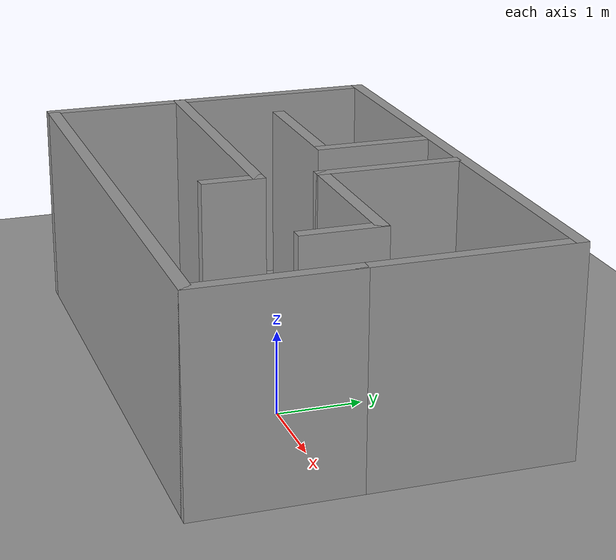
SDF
<sdf version="1.7">
 <world name="default">
  <light name="sun" type="directional">
   <pose>0 0 10 0 -0 0</pose>
   <diffuse>0.8 0.8 0.8 1</diffuse>
   <specular>0.2 0.2 0.2 1</specular>
   <attenuation>
    <range>1000</range>
    <constant>0.9</constant>
    <linear>0.01</linear>
    <quadratic>0.001</quadratic>
   </attenuation>
   <direction>-0.5 0.1 -0.9</direction>
   <spot><inner_angle>0</inner_angle><outer_angle>0</outer_angle><falloff>0</falloff></spot>
  </light>
  <model name="ground_plane">
   <static>1</static>
   <link name="link">
    <collision name="collision">
     <geometry><plane><normal>0 0 1</normal><size>100 100</size></plane></geometry>
     <surface>
      <contact><collide_bitmask>65535</collide_bitmask></contact>
      <friction><ode><mu>100</mu><mu2>50</mu2></ode></friction>
     </surface>
    </collision>
    <visual name="visual">
     <cast_shadows>0</cast_shadows>
     <geometry><plane><normal>0 0 1</normal><size>100 100</size></plane></geometry>
     <material>
      <script><uri>file://media/materials/scripts/gazebo.material</uri><name>Gazebo/Grey</name></script>
     </material>
    </visual>
   </link>
  </model>
  <gravity>0 0 -9.8</gravity>
  <magnetic_field>6e-06 2.3e-05 -4.2e-05</magnetic_field>
  <atmosphere type="adiabatic"/>
  <physics type="ode">
   <max_step_size>0.001</max_step_size>
   <real_time_factor>1</real_time_factor>
   <real_time_update_rate>1000</real_time_update_rate>
  </physics>
  <scene><ambient>0.4 0.4 0.4 1</ambient><background>0.7 0.7 0.7 1</background><shadows>1</shadows></scene>
  <audio><device>default</device></audio>
  <spherical_coordinates>
   <surface_model>EARTH_WGS84</surface_model>
   <latitude_deg>0</latitude_deg>
   <longitude_deg>0</longitude_deg>
   <elevation>0</elevation>
   <heading_deg>0</heading_deg>
  </spherical_coordinates>
  <model name="room1">
   <pose>-1.09301 1.19824 0 0 -0 0</pose>
   <link name="Wall_0">
    <collision name="Wall_0_Collision">
     <geometry><box><size>6.5 0.15 2.5</size></box></geometry>
     <pose>0 0 1.25 0 -0 0</pose>
    </collision>
    <visual name="Wall_0_Visual">
     <pose>0 0 1.25 0 -0 0</pose>
     <geometry><box><size>6.5 0.15 2.5</size></box></geometry>
     <material>
      <script><uri>file://media/materials/scripts/gazebo.material</uri><name>Gazebo/Grey</name></script>
      <ambient>1 1 1 1</ambient>
     </material>
     <meta><layer>0</layer></meta>
    </visual>
    <pose>0 1.3225 0 0 -0 0</pose>
   </link>
   <link name="Wall_1">
    <collision name="Wall_1_Collision">
     <geometry><box><size>2.5 0.15 2.5</size></box></geometry>
     <pose>0 0 1.25 0 -0 0</pose>
    </collision>
    <visual name="Wall_1_Visual">
     <pose>0 0 1.25 0 -0 0</pose>
     <geometry><box><size>2.5 0.15 2.5</size></box></geometry>
     <material>
      <script><uri>file://media/materials/scripts/gazebo.material</uri><name>Gazebo/Grey</name></script>
      <ambient>1 1 1 1</ambient>
     </material>
     <meta><layer>0</layer></meta>
    </visual>
    <pose>3.175 0.1475 0 0 -0 -1.5708</pose>
   </link>
   <link name="Wall_10">
    <collision name="Wall_10_Collision">
     <geometry><box><size>1.5 0.15 2.5</size></box></geometry>
     <pose>0 0 1.25 0 -0 0</pose>
    </collision>
    <visual name="Wall_10_Visual">
     <pose>0 0 1.25 0 -0 0</pose>
     <geometry><box><size>1.5 0.15 2.5</size></box></geometry>
     <material>
      <script><uri>file://media/materials/scripts/gazebo.material</uri><name>Gazebo/Grey</name></script>
      <ambient>1 1 1 1</ambient>
     </material>
     <meta><layer>0</layer></meta>
    </visual>
    <pose>-0.650115 0.601741 0 0 -0 -1.5708</pose>
   </link>
   <link name="Wall_11">
    <collision name="Wall_11_Collision">
     <geometry><box><size>1.75 0.15 2.5</size></box></geometry>
     <pose>0 0 1.25 0 -0 0</pose>
    </collision>
    <visual name="Wall_11_Visual">
     <pose>0 0 1.25 0 -0 0</pose>
     <geometry><box><size>1.75 0.15 2.5</size></box></geometry>
     <material>
      <script><uri>file://media/materials/scripts/gazebo.material</uri><name>Gazebo/Grey</name></script>
      <ambient>1 1 1 1</ambient>
     </material>
     <meta><layer>0</layer></meta>
    </visual>
    <pose>-1.45012 -0.073259 0 0 -0 3.14159</pose>
   </link>
   <link name="Wall_13">
    <collision name="Wall_13_Collision">
     <geometry><box><size>3.5 0.15 2.5</size></box></geometry>
     <pose>0 0 1.25 0 -0 0</pose>
    </collision>
    <visual name="Wall_13_Visual">
     <pose>0 0 1.25 0 -0 0</pose>
     <geometry><box><size>3.5 0.15 2.5</size></box></geometry>
     <material>
      <script><uri>file://media/materials/scripts/gazebo.material</uri><name>Gazebo/Grey</name></script>
      <ambient>1 1 1 1</ambient>
     </material>
     <meta><layer>0</layer></meta>
    </visual>
    <pose>-1.49268 -1.12664 0 0 -0 0</pose>
   </link>
   <link name="Wall_14">
    <collision name="Wall_14_Collision">
     <geometry><box><size>0.75 0.15 2.5</size></box></geometry>
     <pose>0 0 1.25 0 -0 0</pose>
    </collision>
    <visual name="Wall_14_Visual">
     <pose>0 0 1.25 0 -0 0</pose>
     <geometry><box><size>0.75 0.15 2.5</size></box></geometry>
     <material>
      <script><uri>file://media/materials/scripts/gazebo.material</uri><name>Gazebo/Grey</name></script>
      <ambient>1 1 1 1</ambient>
     </material>
     <meta><layer>0</layer></meta>
    </visual>
    <pose>0.182322 -1.42665 0 0 -0 -1.5708</pose>
   </link>
   <link name="Wall_17">
    <collision name="Wall_17_Collision">
     <geometry><box><size>1.75 0.15 2.5</size></box></geometry>
     <pose>0 0 1.25 0 -0 0</pose>
    </collision>
    <visual name="Wall_17_Visual">
     <pose>0 0 1.25 0 -0 0</pose>
     <geometry><box><size>1.75 0.15 2.5</size></box></geometry>
     <material>
      <script><uri>file://media/materials/scripts/gazebo.material</uri><name>Gazebo/Grey</name></script>
      <ambient>1 1 1 1</ambient>
     </material>
     <meta><layer>0</layer></meta>
    </visual>
    <pose>0.262322 0.403355 0 0 -0 -1.5708</pose>
   </link>
   <link name="Wall_18">
    <collision name="Wall_18_Collision">
     <geometry><box><size>2 0.15 2.5</size></box></geometry>
     <pose>0 0 1.25 0 -0 0</pose>
    </collision>
    <visual name="Wall_18_Visual">
     <pose>0 0 1.25 0 -0 0</pose>
     <geometry><box><size>2 0.15 2.5</size></box></geometry>
     <material>
      <script><uri>file://media/materials/scripts/gazebo.material</uri><name>Gazebo/Grey</name></script>
      <ambient>1 1 1 1</ambient>
     </material>
     <meta><layer>0</layer></meta>
    </visual>
    <pose>1.18732 -0.396645 0 0 -0 0</pose>
   </link>
   <link name="Wall_19">
    <collision name="Wall_19_Collision">
     <geometry><box><size>1 0.15 2.5</size></box></geometry>
     <pose>0 0 1.25 0 -0 0</pose>
    </collision>
    <visual name="Wall_19_Visual">
     <pose>0 0 1.25 0 -0 0</pose>
     <geometry><box><size>1 0.15 2.5</size></box></geometry>
     <material>
      <script><uri>file://media/materials/scripts/gazebo.material</uri><name>Gazebo/Grey</name></script>
      <ambient>1 1 1 1</ambient>
     </material>
     <meta><layer>0</layer></meta>
    </visual>
    <pose>2.11232 -0.821645 0 0 -0 -1.5708</pose>
   </link>
   <link name="Wall_21">
    <collision name="Wall_21_Collision">
     <geometry><box><size>4.25 0.15 2.5</size></box></geometry>
     <pose>0 0 1.25 0 -0 0</pose>
    </collision>
    <visual name="Wall_21_Visual">
     <pose>0 0 1.25 0 -0 0</pose>
     <geometry><box><size>4.25 0.15 2.5</size></box></geometry>
     <material>
      <script><uri>file://media/materials/scripts/gazebo.material</uri><name>Gazebo/Grey</name></script>
      <ambient>1 1 1 1</ambient>
     </material>
     <meta><layer>0</layer></meta>
    </visual>
    <pose>-3.175 -0.7275 0 0 -0 -1.5708</pose>
   </link>
   <link name="Wall_23">
    <collision name="Wall_23_Collision">
     <geometry><box><size>6.5 0.15 2.5</size></box></geometry>
     <pose>0 0 1.25 0 -0 0</pose>
    </collision>
    <visual name="Wall_23_Visual">
     <pose>0 0 1.25 0 -0 0</pose>
     <geometry><box><size>6.5 0.15 2.5</size></box></geometry>
     <material>
      <script><uri>file://media/materials/scripts/gazebo.material</uri><name>Gazebo/Grey</name></script>
      <ambient>1 1 1 1</ambient>
     </material>
     <meta><layer>0</layer></meta>
    </visual>
    <pose>0 -2.7775 0 0 -0 0</pose>
   </link>
   <link name="Wall_24">
    <collision name="Wall_24_Collision">
     <geometry><box><size>1.9 0.15 2.5</size></box></geometry>
     <pose>0 0 1.25 0 -0 0</pose>
    </collision>
    <visual name="Wall_24_Visual">
     <pose>0 0 1.25 0 -0 0</pose>
     <geometry><box><size>1.9 0.15 2.5</size></box></geometry>
     <material>
      <script><uri>file://media/materials/scripts/gazebo.material</uri><name>Gazebo/Grey</name></script>
      <ambient>1 1 1 1</ambient>
     </material>
     <meta><layer>0</layer></meta>
    </visual>
    <pose>3.175 -1.9025 0 0 -0 1.5708</pose>
   </link>
   <static>1</static>
  </model>
  <model name="ground_plane_0">
   <static>1</static>
   <link name="link">
    <collision name="collision">
     <geometry><plane><normal>0 0 1</normal><size>100 100</size></plane></geometry>
     <surface>
      <contact><collide_bitmask>65535</collide_bitmask></contact>
      <friction><ode><mu>100</mu><mu2>50</mu2></ode></friction>
     </surface>
    </collision>
    <visual name="visual">
     <cast_shadows>0</cast_shadows>
     <geometry><plane><normal>0 0 1</normal><size>100 100</size></plane></geometry>
     <material>
      <script><uri>file://media/materials/scripts/gazebo.material</uri><name>Gazebo/Grey</name></script>
     </material>
    </visual>
   </link>
   <pose>-3.4927 0.963822 0 0 -0 0</pose>
  </model>
  <model name="unit_box">
   <pose>0.25026 -0.589899 0.499999 2e-06 -0 0</pose>
   <link name="link">
    <inertial>
     <mass>1</mass>
     <inertia>
      <ixx>0.166667</ixx>
      <ixy>0</ixy>
      <ixz>0</ixz>
      <iyy>0.166667</iyy>
      <iyz>0</iyz>
      <izz>0.166667</izz>
     </inertia>
    </inertial>
    <collision name="collision"><geometry><box><size>1 1 1</size></box></geometry></collision>
    <visual name="visual">
     <geometry><box><size>1 1 1</size></box></geometry>
     <material>
      <script><name>Gazebo/Grey</name><uri>file://media/materials/scripts/gazebo.material</uri></script>
     </material>
    </visual>
   </link>
  </model>
 </world>
</sdf>
